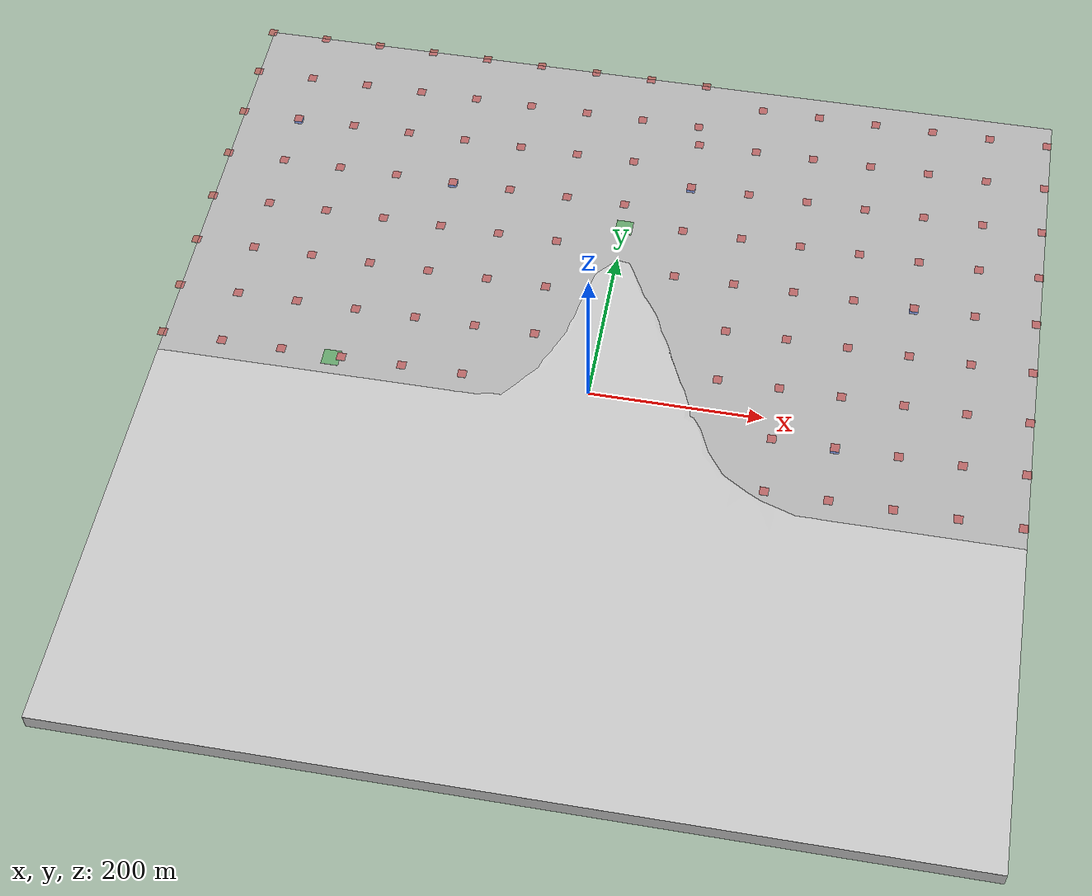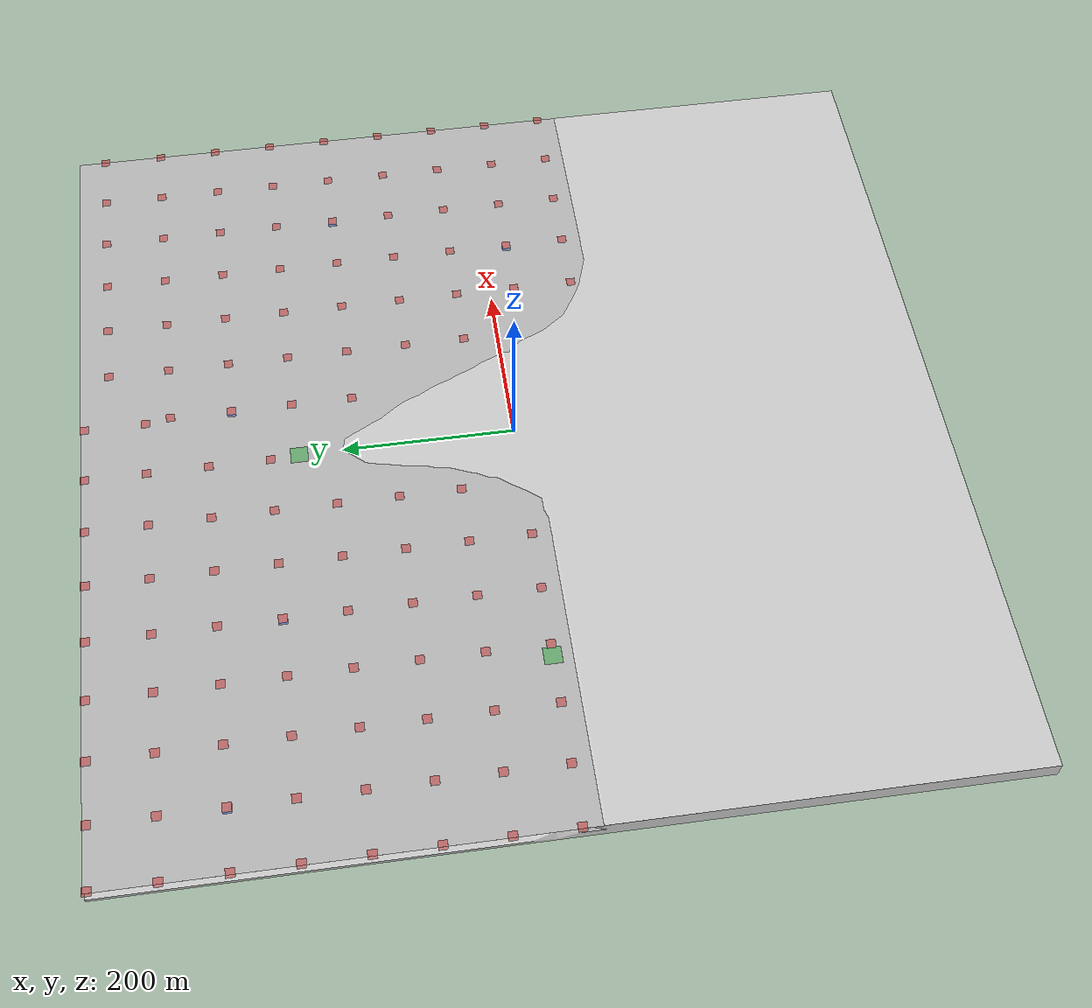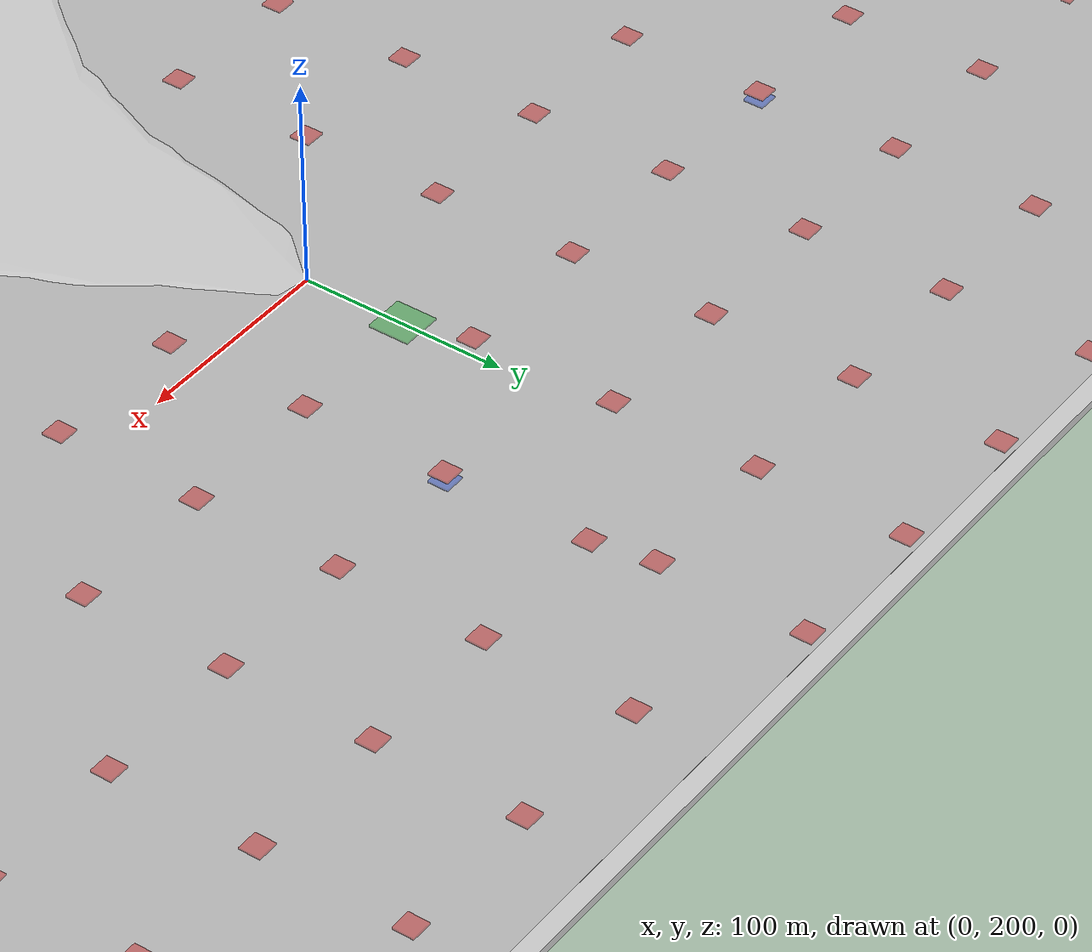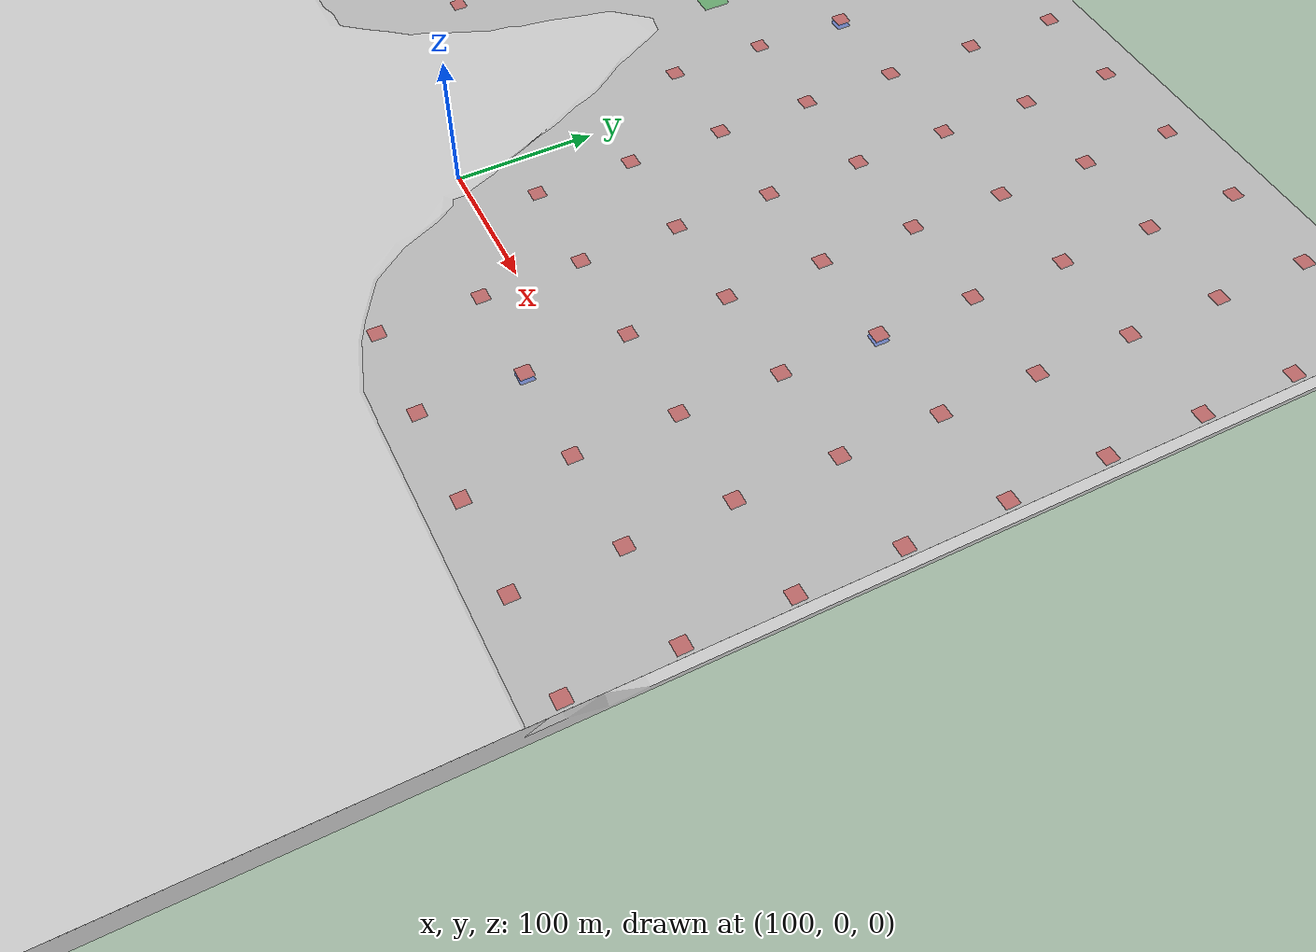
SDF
<?xml version="1.0"?>
<sdf version="1.5">
  <world name="default">
    <include>
      <uri>model://sun</uri>
    </include>
    <include>
      <uri>model://smooth</uri>
      <pose>0 0 0 0 0 0</pose>
    </include>
    <include>
      <name>rect red 1</name>
      <uri>model://rect_red</uri>
      <pose>-500.00 0.00 4 0 0 0</pose>
    </include>
    <include>
      <name>rect red 2</name>
      <uri>model://rect_red</uri>
      <pose>-500.00 70.71 4 0 0 0</pose>
    </include>
    <include>
      <name>rect red 3</name>
      <uri>model://rect_red</uri>
      <pose>-500.00 141.42 4 0 0 0</pose>
    </include>
    <include>
      <name>rect red 4</name>
      <uri>model://rect_red</uri>
      <pose>-500.00 212.13 4 0 0 0</pose>
    </include>
    <include>
      <name>rect red 5</name>
      <uri>model://rect_red</uri>
      <pose>-500.00 282.84 4 0 0 0</pose>
    </include>
    <include>
      <name>rect red 6</name>
      <uri>model://rect_red</uri>
      <pose>-500.00 353.55 4 0 0 0</pose>
    </include>
    <include>
      <name>rect red 7</name>
      <uri>model://rect_red</uri>
      <pose>-500.00 424.26 4 0 0 0</pose>
    </include>
    <include>
      <name>rect red 8</name>
      <uri>model://rect_red</uri>
      <pose>-500.00 494.97 4 0 0 0</pose>
    </include>
    <include>
      <name>rect red 9</name>
      <uri>model://rect_red</uri>
      <pose>-429.29 0.00 4 0 0 0</pose>
    </include>
    <include>
      <name>rect red 10</name>
      <uri>model://rect_red</uri>
      <pose>-429.29 70.71 4 0 0 0</pose>
    </include>
    <include>
      <name>rect red 11</name>
      <uri>model://rect_red</uri>
      <pose>-429.29 141.42 4 0 0 0</pose>
    </include>
    <include>
      <name>rect red 12</name>
      <uri>model://rect_red</uri>
      <pose>-429.29 212.13 4 0 0 0</pose>
    </include>
    <include>
      <name>rect red 13</name>
      <uri>model://rect_red</uri>
      <pose>-429.29 282.84 4 0 0 0</pose>
    </include>
    <include>
      <name>rect red 14</name>
      <uri>model://rect_red</uri>
      <pose>-429.29 353.55 4 0 0 0</pose>
    </include>
    <include>
      <name>rect red 15</name>
      <uri>model://rect_red</uri>
      <pose>-429.29 424.26 4 0 0 0</pose>
    </include>
    <include>
      <name>rect red 16</name>
      <uri>model://rect_red</uri>
      <pose>-429.29 494.97 4 0 0 0</pose>
    </include>
    <include>
      <name>rect red 17</name>
      <uri>model://rect_red</uri>
      <pose>-358.58 0.00 4 0 0 0</pose>
    </include>
    <include>
      <name>rect red 18</name>
      <uri>model://rect_red</uri>
      <pose>-358.58 70.71 4 0 0 0</pose>
    </include>
    <include>
      <name>rect red 19</name>
      <uri>model://rect_red</uri>
      <pose>-358.58 141.42 4 0 0 0</pose>
    </include>
    <include>
      <name>rect red 20</name>
      <uri>model://rect_red</uri>
      <pose>-358.58 212.13 4 0 0 0</pose>
    </include>
    <include>
      <name>rect red 21</name>
      <uri>model://rect_red</uri>
      <pose>-358.58 282.84 4 0 0 0</pose>
    </include>
    <include>
      <name>rect red 22</name>
      <uri>model://rect_red</uri>
      <pose>-358.58 353.55 4 0 0 0</pose>
    </include>
    <include>
      <name>rect red 23</name>
      <uri>model://rect_red</uri>
      <pose>-358.58 424.26 4 0 0 0</pose>
    </include>
    <include>
      <name>rect red 24</name>
      <uri>model://rect_red</uri>
      <pose>-358.58 494.97 4 0 0 0</pose>
    </include>
    <include>
      <name>rect red 25</name>
      <uri>model://rect_red</uri>
      <pose>-287.87 0.00 4 0 0 0</pose>
    </include>
    <include>
      <name>rect red 26</name>
      <uri>model://rect_red</uri>
      <pose>-287.87 70.71 4 0 0 0</pose>
    </include>
    <include>
      <name>rect red 27</name>
      <uri>model://rect_red</uri>
      <pose>-287.87 141.42 4 0 0 0</pose>
    </include>
    <include>
      <name>rect red 28</name>
      <uri>model://rect_red</uri>
      <pose>-287.87 212.13 4 0 0 0</pose>
    </include>
    <include>
      <name>rect red 29</name>
      <uri>model://rect_red</uri>
      <pose>-287.87 282.84 4 0 0 0</pose>
    </include>
    <include>
      <name>rect red 30</name>
      <uri>model://rect_red</uri>
      <pose>-287.87 353.55 4 0 0 0</pose>
    </include>
    <include>
      <name>rect red 31</name>
      <uri>model://rect_red</uri>
      <pose>-287.87 424.26 4 0 0 0</pose>
    </include>
    <include>
      <name>rect red 32</name>
      <uri>model://rect_red</uri>
      <pose>-287.87 494.97 4 0 0 0</pose>
    </include>
    <include>
      <name>rect red 33</name>
      <uri>model://rect_red</uri>
      <pose>-217.16 0.00 4 0 0 0</pose>
    </include>
    <include>
      <name>rect red 34</name>
      <uri>model://rect_red</uri>
      <pose>-217.16 70.71 4 0 0 0</pose>
    </include>
    <include>
      <name>rect red 35</name>
      <uri>model://rect_red</uri>
      <pose>-217.16 141.42 4 0 0 0</pose>
    </include>
    <include>
      <name>rect red 36</name>
      <uri>model://rect_red</uri>
      <pose>-217.16 212.13 4 0 0 0</pose>
    </include>
    <include>
      <name>rect red 37</name>
      <uri>model://rect_red</uri>
      <pose>-217.16 282.84 4 0 0 0</pose>
    </include>
    <include>
      <name>rect red 38</name>
      <uri>model://rect_red</uri>
      <pose>-217.16 353.55 4 0 0 0</pose>
    </include>
    <include>
      <name>rect red 39</name>
      <uri>model://rect_red</uri>
      <pose>-217.16 424.26 4 0 0 0</pose>
    </include>
    <include>
      <name>rect red 40</name>
      <uri>model://rect_red</uri>
      <pose>-217.16 494.97 4 0 0 0</pose>
    </include>
    <include>
      <name>rect red 41</name>
      <uri>model://rect_red</uri>
      <pose>-146.45 0.00 4 0 0 0</pose>
    </include>
    <include>
      <name>rect red 42</name>
      <uri>model://rect_red</uri>
      <pose>-146.45 70.71 4 0 0 0</pose>
    </include>
    <include>
      <name>rect red 43</name>
      <uri>model://rect_red</uri>
      <pose>-146.45 141.42 4 0 0 0</pose>
    </include>
    <include>
      <name>rect red 44</name>
      <uri>model://rect_red</uri>
      <pose>-146.45 212.13 4 0 0 0</pose>
    </include>
    <include>
      <name>rect red 45</name>
      <uri>model://rect_red</uri>
      <pose>-146.45 282.84 4 0 0 0</pose>
    </include>
    <include>
      <name>rect red 46</name>
      <uri>model://rect_red</uri>
      <pose>-146.45 353.55 4 0 0 0</pose>
    </include>
    <include>
      <name>rect red 47</name>
      <uri>model://rect_red</uri>
      <pose>-146.45 424.26 4 0 0 0</pose>
    </include>
    <include>
      <name>rect red 48</name>
      <uri>model://rect_red</uri>
      <pose>-146.45 494.97 4 0 0 0</pose>
    </include>
    <include>
      <name>rect red 49</name>
      <uri>model://rect_red</uri>
      <pose>-75.74 70.71 4 0 0 0</pose>
    </include>
    <include>
      <name>rect red 50</name>
      <uri>model://rect_red</uri>
      <pose>-75.74 141.42 4 0 0 0</pose>
    </include>
    <include>
      <name>rect red 51</name>
      <uri>model://rect_red</uri>
      <pose>-75.74 212.13 4 0 0 0</pose>
    </include>
    <include>
      <name>rect red 52</name>
      <uri>model://rect_red</uri>
      <pose>-75.74 282.84 4 0 0 0</pose>
    </include>
    <include>
      <name>rect red 53</name>
      <uri>model://rect_red</uri>
      <pose>-75.74 353.55 4 0 0 0</pose>
    </include>
    <include>
      <name>rect red 54</name>
      <uri>model://rect_red</uri>
      <pose>-75.74 424.26 4 0 0 0</pose>
    </include>
    <include>
      <name>rect red 55</name>
      <uri>model://rect_red</uri>
      <pose>-75.74 494.97 4 0 0 0</pose>
    </include>
    <include>
      <name>rect red 56</name>
      <uri>model://rect_red</uri>
      <pose>-5.03 282.84 4 0 0 0</pose>
    </include>
    <include>
      <name>rect red 57</name>
      <uri>model://rect_red</uri>
      <pose>-5.03 353.55 4 0 0 0</pose>
    </include>
    <include>
      <name>rect red 58</name>
      <uri>model://rect_red</uri>
      <pose>-5.03 424.26 4 0 0 0</pose>
    </include>
    <include>
      <name>rect red 59</name>
      <uri>model://rect_red</uri>
      <pose>-5.03 494.97 4 0 0 0</pose>
    </include>
    <include>
      <name>rect red 60</name>
      <uri>model://rect_red</uri>
      <pose>65.69 424.26 4 0 0 0</pose>
    </include>
    <include>
      <name>rect red 61</name>
      <uri>model://rect_red</uri>
      <pose>65.69 494.97 4 0 0 0</pose>
    </include>
    <include>
      <name>rect red 62</name>
      <uri>model://rect_red</uri>
      <pose>70.71 182.84 4 0 0 0</pose>
    </include>
    <include>
      <name>rect red 63</name>
      <uri>model://rect_red</uri>
      <pose>70.71 253.55 4 0 0 0</pose>
    </include>
    <include>
      <name>rect red 64</name>
      <uri>model://rect_red</uri>
      <pose>70.71 324.26 4 0 0 0</pose>
    </include>
    <include>
      <name>rect red 65</name>
      <uri>model://rect_red</uri>
      <pose>70.71 394.97 4 0 0 0</pose>
    </include>
    <include>
      <name>rect red 66</name>
      <uri>model://rect_red</uri>
      <pose>141.42 41.42 4 0 0 0</pose>
    </include>
    <include>
      <name>rect red 67</name>
      <uri>model://rect_red</uri>
      <pose>141.42 112.13 4 0 0 0</pose>
    </include>
    <include>
      <name>rect red 68</name>
      <uri>model://rect_red</uri>
      <pose>141.42 182.84 4 0 0 0</pose>
    </include>
    <include>
      <name>rect red 69</name>
      <uri>model://rect_red</uri>
      <pose>141.42 253.55 4 0 0 0</pose>
    </include>
    <include>
      <name>rect red 70</name>
      <uri>model://rect_red</uri>
      <pose>141.42 324.26 4 0 0 0</pose>
    </include>
    <include>
      <name>rect red 71</name>
      <uri>model://rect_red</uri>
      <pose>141.42 394.97 4 0 0 0</pose>
    </include>
    <include>
      <name>rect red 72</name>
      <uri>model://rect_red</uri>
      <pose>141.42 465.69 4 0 0 0</pose>
    </include>
    <include>
      <name>rect red 73</name>
      <uri>model://rect_red</uri>
      <pose>212.13 -100.00 4 0 0 0</pose>
    </include>
    <include>
      <name>rect red 74</name>
      <uri>model://rect_red</uri>
      <pose>212.13 -29.29 4 0 0 0</pose>
    </include>
    <include>
      <name>rect red 75</name>
      <uri>model://rect_red</uri>
      <pose>212.13 41.42 4 0 0 0</pose>
    </include>
    <include>
      <name>rect red 76</name>
      <uri>model://rect_red</uri>
      <pose>212.13 112.13 4 0 0 0</pose>
    </include>
    <include>
      <name>rect red 77</name>
      <uri>model://rect_red</uri>
      <pose>212.13 182.84 4 0 0 0</pose>
    </include>
    <include>
      <name>rect red 78</name>
      <uri>model://rect_red</uri>
      <pose>212.13 253.55 4 0 0 0</pose>
    </include>
    <include>
      <name>rect red 79</name>
      <uri>model://rect_red</uri>
      <pose>212.13 324.26 4 0 0 0</pose>
    </include>
    <include>
      <name>rect red 80</name>
      <uri>model://rect_red</uri>
      <pose>212.13 394.97 4 0 0 0</pose>
    </include>
    <include>
      <name>rect red 81</name>
      <uri>model://rect_red</uri>
      <pose>212.13 465.69 4 0 0 0</pose>
    </include>
    <include>
      <name>rect red 82</name>
      <uri>model://rect_red</uri>
      <pose>282.84 -100.00 4 0 0 0</pose>
    </include>
    <include>
      <name>rect red 83</name>
      <uri>model://rect_red</uri>
      <pose>282.84 -29.29 4 0 0 0</pose>
    </include>
    <include>
      <name>rect red 84</name>
      <uri>model://rect_red</uri>
      <pose>282.84 41.42 4 0 0 0</pose>
    </include>
    <include>
      <name>rect red 85</name>
      <uri>model://rect_red</uri>
      <pose>282.84 112.13 4 0 0 0</pose>
    </include>
    <include>
      <name>rect red 86</name>
      <uri>model://rect_red</uri>
      <pose>282.84 182.84 4 0 0 0</pose>
    </include>
    <include>
      <name>rect red 87</name>
      <uri>model://rect_red</uri>
      <pose>282.84 253.55 4 0 0 0</pose>
    </include>
    <include>
      <name>rect red 88</name>
      <uri>model://rect_red</uri>
      <pose>282.84 324.26 4 0 0 0</pose>
    </include>
    <include>
      <name>rect red 89</name>
      <uri>model://rect_red</uri>
      <pose>282.84 394.97 4 0 0 0</pose>
    </include>
    <include>
      <name>rect red 90</name>
      <uri>model://rect_red</uri>
      <pose>282.84 465.69 4 0 0 0</pose>
    </include>
    <include>
      <name>rect red 91</name>
      <uri>model://rect_red</uri>
      <pose>353.55 -100.00 4 0 0 0</pose>
    </include>
    <include>
      <name>rect red 92</name>
      <uri>model://rect_red</uri>
      <pose>353.55 -29.29 4 0 0 0</pose>
    </include>
    <include>
      <name>rect red 93</name>
      <uri>model://rect_red</uri>
      <pose>353.55 41.42 4 0 0 0</pose>
    </include>
    <include>
      <name>rect red 94</name>
      <uri>model://rect_red</uri>
      <pose>353.55 112.13 4 0 0 0</pose>
    </include>
    <include>
      <name>rect red 95</name>
      <uri>model://rect_red</uri>
      <pose>353.55 182.84 4 0 0 0</pose>
    </include>
    <include>
      <name>rect red 96</name>
      <uri>model://rect_red</uri>
      <pose>353.55 253.55 4 0 0 0</pose>
    </include>
    <include>
      <name>rect red 97</name>
      <uri>model://rect_red</uri>
      <pose>353.55 324.26 4 0 0 0</pose>
    </include>
    <include>
      <name>rect red 98</name>
      <uri>model://rect_red</uri>
      <pose>353.55 394.97 4 0 0 0</pose>
    </include>
    <include>
      <name>rect red 99</name>
      <uri>model://rect_red</uri>
      <pose>353.55 465.69 4 0 0 0</pose>
    </include>
    <include>
      <name>rect red 100</name>
      <uri>model://rect_red</uri>
      <pose>424.26 -100.00 4 0 0 0</pose>
    </include>
    <include>
      <name>rect red 101</name>
      <uri>model://rect_red</uri>
      <pose>424.26 -29.29 4 0 0 0</pose>
    </include>
    <include>
      <name>rect red 102</name>
      <uri>model://rect_red</uri>
      <pose>424.26 41.42 4 0 0 0</pose>
    </include>
    <include>
      <name>rect red 103</name>
      <uri>model://rect_red</uri>
      <pose>424.26 112.13 4 0 0 0</pose>
    </include>
    <include>
      <name>rect red 104</name>
      <uri>model://rect_red</uri>
      <pose>424.26 182.84 4 0 0 0</pose>
    </include>
    <include>
      <name>rect red 105</name>
      <uri>model://rect_red</uri>
      <pose>424.26 253.55 4 0 0 0</pose>
    </include>
    <include>
      <name>rect red 106</name>
      <uri>model://rect_red</uri>
      <pose>424.26 324.26 4 0 0 0</pose>
    </include>
    <include>
      <name>rect red 107</name>
      <uri>model://rect_red</uri>
      <pose>424.26 394.97 4 0 0 0</pose>
    </include>
    <include>
      <name>rect red 108</name>
      <uri>model://rect_red</uri>
      <pose>424.26 465.69 4 0 0 0</pose>
    </include>
    <include>
      <name>rect red 109</name>
      <uri>model://rect_red</uri>
      <pose>494.97 -100.00 4 0 0 0</pose>
    </include>
    <include>
      <name>rect red 110</name>
      <uri>model://rect_red</uri>
      <pose>494.97 -29.29 4 0 0 0</pose>
    </include>
    <include>
      <name>rect red 111</name>
      <uri>model://rect_red</uri>
      <pose>494.97 41.42 4 0 0 0</pose>
    </include>
    <include>
      <name>rect red 112</name>
      <uri>model://rect_red</uri>
      <pose>494.97 112.13 4 0 0 0</pose>
    </include>
    <include>
      <name>rect red 113</name>
      <uri>model://rect_red</uri>
      <pose>494.97 182.84 4 0 0 0</pose>
    </include>
    <include>
      <name>rect red 114</name>
      <uri>model://rect_red</uri>
      <pose>494.97 253.55 4 0 0 0</pose>
    </include>
    <include>
      <name>rect red 115</name>
      <uri>model://rect_red</uri>
      <pose>494.97 324.26 4 0 0 0</pose>
    </include>
    <include>
      <name>rect red 116</name>
      <uri>model://rect_red</uri>
      <pose>494.97 394.97 4 0 0 0</pose>
    </include>
    <include>
      <name>rect red 117</name>
      <uri>model://rect_red</uri>
      <pose>494.97 465.69 4 0 0 0</pose>
    </include>
    <include>
      <name>rect blue 118</name>
      <uri>model://rect_blue</uri>
      <pose>-429.29 353.55 0 0 0 0</pose>
    </include>
    <include>
      <name>rect blue 119</name>
      <uri>model://rect_blue</uri>
      <pose>70.71 324.26 0 0 0 0</pose>
    </include>
    <include>
      <name>rect blue 120</name>
      <uri>model://rect_blue</uri>
      <pose>282.84 -29.29 0 0 0 0</pose>
    </include>
    <include>
      <name>rect blue 121</name>
      <uri>model://rect_blue</uri>
      <pose>-217.16 282.84 0 0 0 0</pose>
    </include>
    <include>
      <name>rect blue 122</name>
      <uri>model://rect_blue</uri>
      <pose>353.55 182.84 0 0 0 0</pose>
    </include>
    <include>
      <name>rect green 123</name>
      <uri>model://rect_green</uri>
      <pose>-300.00 0.00 0 0 0 0</pose>
    </include>
    <include>
      <name>rect green 124</name>
      <uri>model://rect_green</uri>
      <pose>0.00 250.00 0 0 0 0</pose>
    </include>
    <spherical_coordinates>
      <surface_model>EARTH_WGS84</surface_model>
      <latitude_deg>43.81678595809796</latitude_deg>
      <longitude_deg>28.581366799068558</longitude_deg>
      <elevation>1.7</elevation>
    </spherical_coordinates>
  </world>
</sdf>

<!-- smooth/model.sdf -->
<sdf version="1.5">
  <model name="model">
      <pose>0 0 0  0 0 0</pose>
      <static>true</static>
      <link name="body">
        <collision name="seabed">
          <pose>0 0 -5.5 0 0 0</pose>
          <geometry>
            <mesh><uri>model://smooth/meshes/av4vai_world_scaled.dae</uri></mesh>
          </geometry>
          <material>
            <script>
              <uri>model://smooth/materials/scripts/sand.material</uri>
              <name>UUVSimulator/SandAndStones</name>
            </script>
          </material>
        </collision>

        <visual name="seabed">
          <pose>0 0 -5.5 0 0 0</pose>
          <geometry>
            <mesh><uri>model://smooth/meshes/av4vai_world_scaled.dae</uri></mesh>
          </geometry>
          <material>
            <script>
              <uri>model://smooth/materials/scripts/sand.material</uri>
              <name>UUVSimulator/SandAndStones</name>
            </script>
          </material>
        </visual>
        <visual name="surface">
          <pose>0 0 0 0 0 0</pose>
          <geometry>
            <box>
              <size>1000 1000 .1</size>
            </box>
          </geometry>
          <material>
            <script>
              <uri>model://smooth/materials/scripts/water.material</uri>
              <name>UUVSimulator/StaticWater</name>
            </script>
          </material>
        </visual>
      </link>
    </model>
</sdf>

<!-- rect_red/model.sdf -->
<sdf version="1.5">
  <model name="rect_red">
    <static>true</static>
    <link name="link">
      <visual name="visual">
        <pose>0 0 0.5 0 0 0</pose>
        <geometry>
          <box>
            <size>10 10 1</size>
          </box>
	</geometry>
	<material>
          <script>
            <name>Gazebo/RedTransparent</name>
            <uri>file://media/materials/scripts/gazebo.material</uri>
          </script>
        </material>
      </visual>
    </link>
  </model>
</sdf>

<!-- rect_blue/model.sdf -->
<sdf version="1.5">
  <model name="rect_blue">
    <static>true</static>
    <link name="link">
      <visual name="visual">
        <pose>0 0 0.5 0 0 0</pose>
        <geometry>
          <box>
            <size>10 10 1</size>
          </box>
	</geometry>
	<material>
          <script>
            <name>Gazebo/BlueTransparent</name>
            <uri>file://media/materials/scripts/gazebo.material</uri>
          </script>
        </material>
      </visual>
    </link>
  </model>
</sdf>

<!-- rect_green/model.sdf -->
<sdf version="1.5">
  <model name="rect_green">
    <static>true</static>
    <link name="link">
      <visual name="visual">
        <pose>0 0 0.5 0 0 0</pose>
        <geometry>
          <box>
            <size>20 20 1</size>
          </box>
	</geometry>
	<material>
          <script>
            <name>Gazebo/GreenTransparent</name>
            <uri>file://media/materials/scripts/gazebo.material</uri>
          </script>
        </material>
      </visual>
    </link>
  </model>
</sdf>
